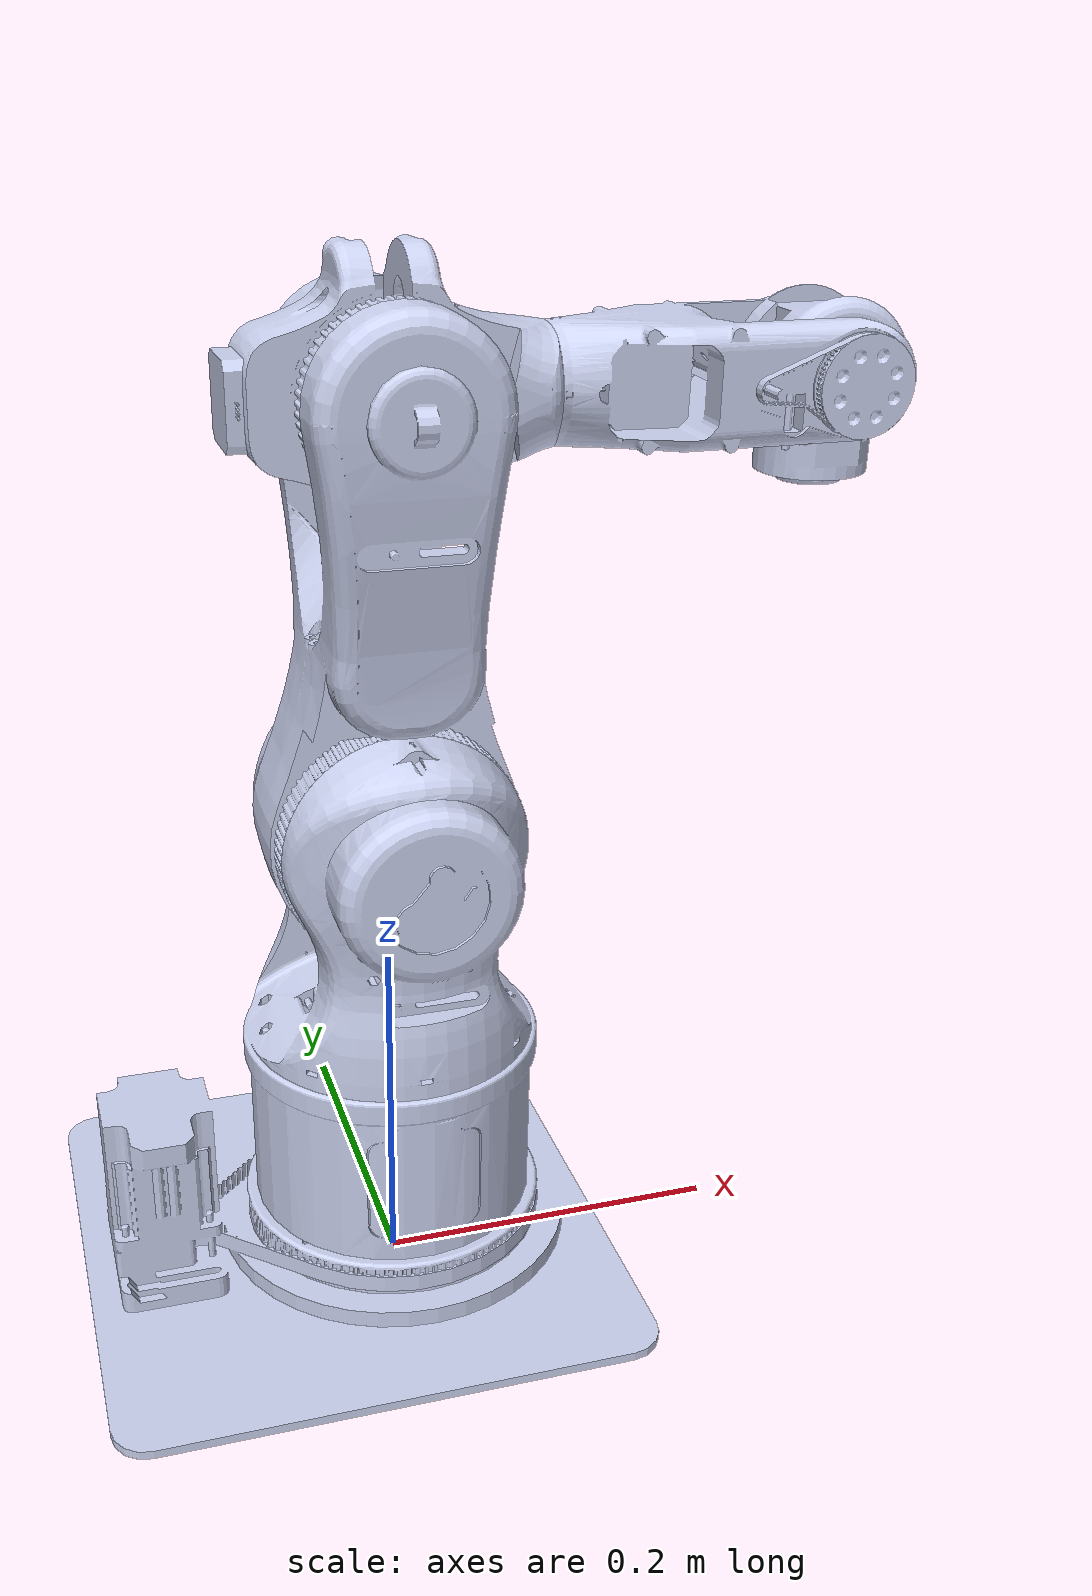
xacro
<?xml version="1.0"?>
<robot name="probot_6axis" xmlns:xacro="http://www.ros.org/wiki/xacro">

  <xacro:property name="M_PI" value="3.1415926536"/>

  <link name="base_footprint"/>
  <joint name="joint_0" type="fixed">
    <origin xyz="0 0 0.0532" rpy="0 0 0" />
    <parent link="base_footprint" />
    <child link="base_link" />
  </joint>

  <link name="base_link">
    <inertial>
      <origin xyz="-0.010934 0.23134 0.0051509" rpy="0 0 0" />
      <mass value="19.574" />
      <inertia ixx="0" ixy="0" ixz="0" iyy="0" iyz="0" izz="0" />
    </inertial>
    <visual>
      <origin xyz="0.017266 0 0" rpy="0 0 0" />
      <geometry>
        <mesh filename="package://probot_description/meshes/base_link.STL" />
      </geometry>
      <material name="">
        <color rgba="0.79216 0.81961 0.93333 1" />
      </material>
    </visual>
    <collision>
      <origin xyz="0.017266 0 0" rpy="0 0 0" />
      <geometry>
        <mesh filename="package://probot_description/meshes/base_link.STL" />
      </geometry>
    </collision>
  </link>

  <link name="link_1">
    <inertial>
      <origin xyz="-0.010934 0.23134 0.0051509" rpy="0 0 0" />
      <mass value="19.574" />
      <inertia ixx="0" ixy="0" ixz="0" iyy="0" iyz="0" izz="0" />
    </inertial>
    <visual>
      <origin xyz="0 0 0" rpy="0 0 0" />
      <geometry>
        <mesh filename="package://probot_description/meshes/link_1.STL" />
      </geometry>
      <material name="">
        <color rgba="0.79216 0.81961 0.93333 1" />
      </material>
    </visual>
    <collision>
      <origin xyz="0 0 0" rpy="0 0 0" />
      <geometry>
        <mesh filename="package://probot_description/meshes/link_1.STL" />
      </geometry>
    </collision>
  </link>
  <joint name="joint_1" type="revolute">
    <origin xyz="0 0 0" rpy="1.5708 0 0" />
    <parent link="base_link" />
    <child link="link_1" />
    <axis xyz="0 1 0" />
    <limit lower="-3.1416" upper="3.1416" effort="100" velocity="3.4907" />
  </joint>

  <link name="link_2">
    <inertial>
      <origin xyz="-0.010934 0.23134 0.0051509" rpy="0 0 0" />
      <mass value="19.574" />
      <inertia ixx="0" ixy="0" ixz="0" iyy="0" iyz="0" izz="0" />
    </inertial>
    <visual>
      <origin xyz="0 0 0" rpy="0 0 0" />
      <geometry>
        <mesh filename="package://probot_description/meshes/link_2.STL" />
      </geometry>
      <material name="">
        <color rgba="0.79216 0.81961 0.93333 1" />
      </material>
    </visual>
    <collision>
      <origin xyz="0 0 0" rpy="0 0 0" />
      <geometry>
        <mesh filename="package://probot_description/meshes/link_2.STL" />
      </geometry>
    </collision>
  </link>
  <joint name="joint_2" type="revolute">
    <origin xyz="0 0.2305 0" rpy="0 0 0" />
    <parent link="link_1" />
    <child link="link_2" />
    <axis xyz="0 0 1" />
    <limit lower="-2.0071" upper="2.0071" effort="100" velocity="3.4907" />
  </joint>

  <link name="link_3">
    <inertial>
      <origin xyz="-0.010934 0.23134 0.0051509" rpy="0 0 0" />
      <mass value="19.574" />
      <inertia ixx="0" ixy="0" ixz="0" iyy="0" iyz="0" izz="0" />
    </inertial>
    <visual>
      <origin xyz="0 0 0" rpy="0 0 0" />
      <geometry>
        <mesh filename="package://probot_description/meshes/link_3.STL" />
      </geometry>
      <material name="">
        <color rgba="0.79216 0.81961 0.93333 1" />
      </material>
    </visual>
    <collision>
      <origin xyz="0 0 0" rpy="0 0 0" />
      <geometry>
        <mesh filename="package://probot_description/meshes/link_3.STL" />
      </geometry>
    </collision>
  </link>
  <joint name="joint_3" type="revolute">
    <origin xyz="0 0.225 0" rpy="0 0 0" />
    <parent link="link_2" />
    <child link="link_3" />
    <axis xyz="0 0 1" />
    <limit lower="-0.6981" upper="3.8397" effort="100" velocity="3.4907" />
  </joint>

  <link name="link_4">
    <inertial>
      <origin xyz="-0.010934 0.23134 0.0051509" rpy="0 0 0" />
      <mass value="19.574" />
      <inertia ixx="0" ixy="0" ixz="0" iyy="0" iyz="0" izz="0" />
    </inertial>
    <visual>
      <origin xyz="0 0 0" rpy="0 0 0" />
      <geometry>
        <mesh filename="package://probot_description/meshes/link_4.STL" />
      </geometry>
      <material name="">
        <color rgba="0.79216 0.81961 0.93333 1" />
      </material>
    </visual>
    <collision>
      <origin xyz="0 0 0" rpy="0 0 0" />
      <geometry>
        <mesh filename="package://probot_description/meshes/link_4.STL" />
      </geometry>
    </collision>
  </link>
  <joint name="joint_4" type="revolute">
    <origin xyz="0.021 0 0.002" rpy="0 0 0" />
    <parent link="link_3" />
    <child link="link_4" />
    <axis xyz="1 0 0" />
    <limit lower="-3.1416" upper="3.1416" effort="100" velocity="3.4907" />
  </joint>

  <link name="link_5">
    <inertial>
      <origin xyz="-0.010934 0.23134 0.0051509" rpy="0 0 0" />
      <mass value="19.574" />
      <inertia ixx="0" ixy="0" ixz="0" iyy="0" iyz="0" izz="0" />
    </inertial>
    <visual>
      <origin xyz="0 0 0" rpy="0 0 0" />
      <geometry>
        <mesh filename="package://probot_description/meshes/link_5.STL" />
      </geometry>
      <material name="">
        <color rgba="0.79216 0.81961 0.93333 1" />
      </material>
    </visual>
    <collision>
      <origin xyz="0 0 0" rpy="0 0 0" />
      <geometry>
        <mesh filename="package://probot_description/meshes/link_5.STL" />
      </geometry>
    </collision>
  </link>
  <joint name="joint_5" type="revolute">
    <origin xyz="0.20586 0 0" rpy="0 0 0" />
    <parent link="link_4" />
    <child link="link_5" />
    <axis xyz="0 0 1" />
    <limit lower="-1.3090" upper="4.4506" effort="100" velocity="3.4907" />
  </joint>

  <link name="link_6">
    <inertial>
      <origin xyz="-0.010934 0.23134 0.0051509" rpy="0 0 0" />
      <mass value="19.574" />
      <inertia ixx="0" ixy="0" ixz="0" iyy="0" iyz="0" izz="0" />
    </inertial>
    <visual>
      <origin xyz="0 0 0" rpy="0 0 0" />
      <geometry>
        <mesh filename="package://probot_description/meshes/link_6.STL" />
      </geometry>
      <material name="">
        <color rgba="0.79216 0.81961 0.93333 1" />
      </material>
    </visual>
    <collision>
      <origin xyz="0 0 0" rpy="0 0 0" />
      <geometry>
        <mesh filename="package://probot_description/meshes/link_6.STL" />
      </geometry>
    </collision>
  </link>
  <joint name="joint_6" type="revolute">
    <origin xyz="0 -0.042 0" rpy="0 0 0" />
    <parent link="link_5" />
    <child link="link_6" />
    <axis xyz="0 -1 0" />
    <limit lower="-3.1416" upper="3.1416" effort="100" velocity="3.4907" />
  </joint>

  <link name="tool0"/>
  <joint name="joint_tool0" type="fixed">
    <origin xyz="0 -0.013 0" rpy="0 0 0" />
    <parent link="link_6" />
    <child link="tool0" />
  </joint>

</robot>
